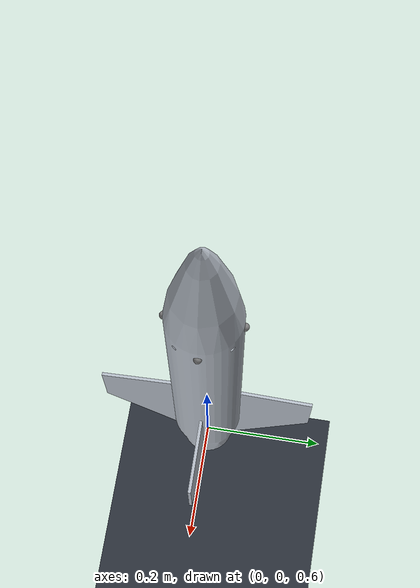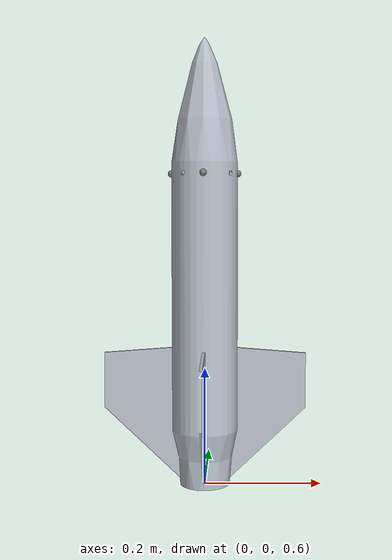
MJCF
<mujoco model="rocket_ship">
  <compiler angle="radian" meshdir="." balanceinertia="true" discardvisual="false"/>
  <option gravity="0 0 -9.81" density="1.225" viscosity="1.8e-5" integrator="implicitfast"/>
  <visual><global offwidth="1600" offheight="1200"/></visual>

  <asset>
    <mesh name="ship" file="rocket_ship.stl" scale="0.001 0.001 0.001"/>
    <texture name="grid" type="2d" builtin="checker" rgb1=".14 .16 .19"
             rgb2=".19 .22 .26" width="512" height="512"/>
    <material name="grid" texture="grid" texrepeat="8 8" reflectance="0.05"/>
    <material name="hull" rgba="0.72 0.75 0.79 1"/>
  </asset>

  <worldbody>
    <light pos="2 -2 4" dir="-0.4 0.4 -1" directional="true"/>
    <geom name="ground" type="plane" size="30 30 0.1" material="grid"/>
    <body name="rocket" pos="0 0 0.6">
      <freejoint name="root"/>
      <inertial pos="0 0 0.31887" mass="1.3430"
                diaginertia="0.051853 0.051853 0.007723"/>
      <geom type="mesh" mesh="ship" material="hull" mass="0"
            friction="0.6 0.01 0.001"/>
      <site name="main" pos="0 0 0" zaxis="0 0 1" size="0.012"/>
      <site name="rcs0" pos="0.05600 0.00000 0.53340" zaxis="-0.94693 0.32144 0.00000" size="0.006"/>
      <site name="rcs1" pos="0.00000 0.05600 0.53340" zaxis="-0.32144 -0.94693 0.00000" size="0.006"/>
      <site name="rcs2" pos="-0.05600 0.00000 0.53340" zaxis="0.94693 -0.32144 0.00000" size="0.006"/>
      <site name="rcs3" pos="-0.00000 -0.05600 0.53340" zaxis="0.32144 0.94693 0.00000" size="0.006"/>
    </body>
  </worldbody>

  <actuator>
    <general site="main" gear="0 0 1 0 0 0" ctrlrange="0 80.0" name="main_thruster"/>
    <general site="rcs0" gear="0 0 1 0 0 0" ctrlrange="0 3.0" name="rcs0"/>
    <general site="rcs1" gear="0 0 1 0 0 0" ctrlrange="0 3.0" name="rcs1"/>
    <general site="rcs2" gear="0 0 1 0 0 0" ctrlrange="0 3.0" name="rcs2"/>
    <general site="rcs3" gear="0 0 1 0 0 0" ctrlrange="0 3.0" name="rcs3"/>
  </actuator>
</mujoco>
